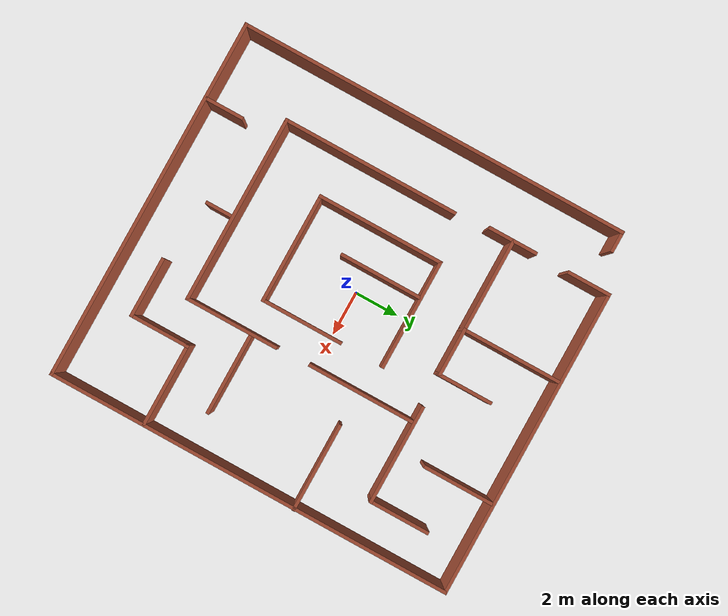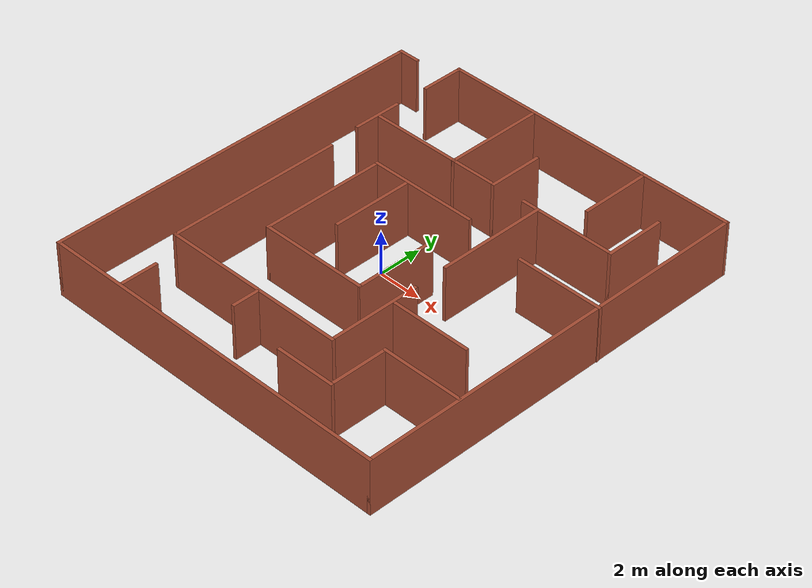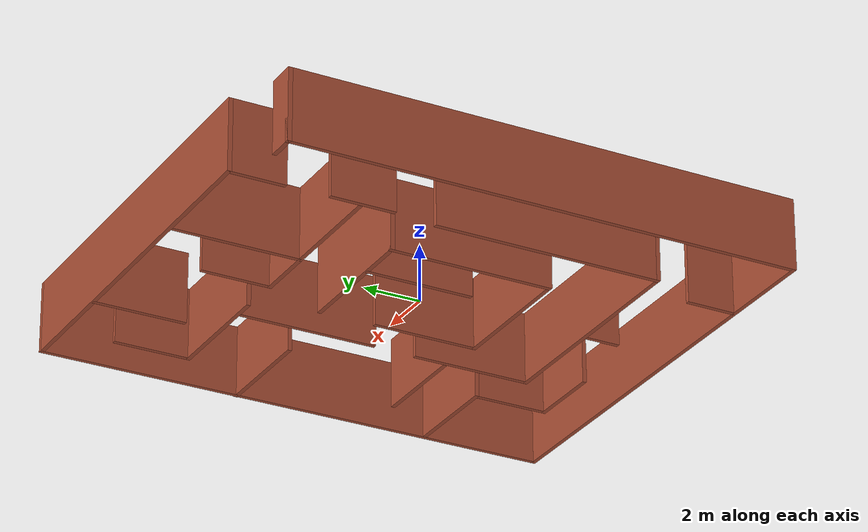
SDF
<?xml version='1.0'?>
<sdf version='1.7'>
  <model name='walls'>
    <pose>0.822707 -0.094534 0 0 -0 0</pose>
    <link name='Wall_10'>
      <collision name='Wall_10_Collision'>
        <geometry>
          <box>
            <size>2 0.15 2.5</size>
          </box>
        </geometry>
        <pose>0 0 1.25 0 -0 0</pose>
      </collision>
      <visual name='Wall_10_Visual'>
        <pose>0 0 1.25 0 -0 0</pose>
        <geometry>
          <box>
            <size>2 0.15 2.5</size>
          </box>
        </geometry>
        <material>
          <script>
            <uri>file://media/materials/scripts/gazebo.material</uri>
            <name>Gazebo/Bricks</name>
          </script>
          <ambient>1 1 1 1</ambient>
        </material>
        <meta>
          <layer>0</layer>
        </meta>
      </visual>
      <pose>-5.68821 8.25 0 0 -0 -1.5708</pose>
    </link>
    <link name='Wall_13'>
      <collision name='Wall_13_Collision'>
        <geometry>
          <box>
            <size>2.25 0.15 2.5</size>
          </box>
        </geometry>
        <pose>0 0 1.25 0 -0 0</pose>
      </collision>
      <visual name='Wall_13_Visual'>
        <pose>0 0 1.25 0 -0 0</pose>
        <geometry>
          <box>
            <size>2.25 0.15 2.5</size>
          </box>
        </geometry>
        <material>
          <script>
            <uri>file://media/materials/scripts/gazebo.material</uri>
            <name>Gazebo/Bricks</name>
          </script>
          <ambient>1 1 1 1</ambient>
        </material>
        <meta>
          <layer>0</layer>
        </meta>
      </visual>
      <pose>-5.72244 4.67661 0 0 -0 -1.5708</pose>
    </link>
    <link name='Wall_15'>
      <collision name='Wall_15_Collision'>
        <geometry>
          <box>
            <size>4.25 0.15 2.5</size>
          </box>
        </geometry>
        <pose>0 0 1.25 0 -0 0</pose>
      </collision>
      <visual name='Wall_15_Visual'>
        <pose>0 0 1.25 0 -0 0</pose>
        <geometry>
          <box>
            <size>4.25 0.15 2.5</size>
          </box>
        </geometry>
        <material>
          <script>
            <uri>file://media/materials/scripts/gazebo.material</uri>
            <name>Gazebo/Bricks</name>
          </script>
          <ambient>1 1 1 1</ambient>
        </material>
        <meta>
          <layer>0</layer>
        </meta>
      </visual>
      <pose>-3.62592 4.70309 0 0 -0 0</pose>
    </link>
    <link name='Wall_16'>
      <collision name='Wall_16_Collision'>
        <geometry>
          <box>
            <size>4.5 0.15 2.5</size>
          </box>
        </geometry>
        <pose>0 0 1.25 0 -0 0</pose>
      </collision>
      <visual name='Wall_16_Visual'>
        <pose>0 0 1.25 0 -0 0</pose>
        <geometry>
          <box>
            <size>4.5 0.15 2.5</size>
          </box>
        </geometry>
        <material>
          <script>
            <uri>file://media/materials/scripts/gazebo.material</uri>
            <name>Gazebo/Bricks</name>
          </script>
          <ambient>1 1 1 1</ambient>
        </material>
        <meta>
          <layer>0</layer>
        </meta>
      </visual>
      <pose>-1.57592 6.87809 0 0 -0 1.5708</pose>
    </link>
    <link name='Wall_18'>
      <collision name='Wall_18_Collision'>
        <geometry>
          <box>
            <size>2.25 0.15 2.5</size>
          </box>
        </geometry>
        <pose>0 0 1.25 0 -0 0</pose>
      </collision>
      <visual name='Wall_18_Visual'>
        <pose>0 0 1.25 0 -0 0</pose>
        <geometry>
          <box>
            <size>2.25 0.15 2.5</size>
          </box>
        </geometry>
        <material>
          <script>
            <uri>file://media/materials/scripts/gazebo.material</uri>
            <name>Gazebo/Bricks</name>
          </script>
          <ambient>1 1 1 1</ambient>
        </material>
        <meta>
          <layer>0</layer>
        </meta>
      </visual>
      <pose>-0.525917 4.70309 0 0 -0 0</pose>
    </link>
    <link name='Wall_20'>
      <collision name='Wall_20_Collision'>
        <geometry>
          <box>
            <size>4.5 0.15 2.5</size>
          </box>
        </geometry>
        <pose>0 0 1.25 0 -0 0</pose>
      </collision>
      <visual name='Wall_20_Visual'>
        <pose>0 0 1.25 0 -0 0</pose>
        <geometry>
          <box>
            <size>4.5 0.15 2.5</size>
          </box>
        </geometry>
        <material>
          <script>
            <uri>file://media/materials/scripts/gazebo.material</uri>
            <name>Gazebo/Bricks</name>
          </script>
          <ambient>1 1 1 1</ambient>
        </material>
        <meta>
          <layer>0</layer>
        </meta>
      </visual>
      <pose>4.22205 4.74961 0 0 -0 0</pose>
    </link>
    <link name='Wall_22'>
      <collision name='Wall_22_Collision'>
        <geometry>
          <box>
            <size>3.25 0.15 2.5</size>
          </box>
        </geometry>
        <pose>0 0 1.25 0 -0 0</pose>
      </collision>
      <visual name='Wall_22_Visual'>
        <pose>0 0 1.25 0 -0 0</pose>
        <geometry>
          <box>
            <size>3.25 0.15 2.5</size>
          </box>
        </geometry>
        <material>
          <script>
            <uri>file://media/materials/scripts/gazebo.material</uri>
            <name>Gazebo/Bricks</name>
          </script>
          <ambient>1 1 1 1</ambient>
        </material>
        <meta>
          <layer>0</layer>
        </meta>
      </visual>
      <pose>4.0941 7.57286 0 0 -0 -1.5708</pose>
    </link>
    <link name='Wall_24'>
      <collision name='Wall_24_Collision'>
        <geometry>
          <box>
            <size>5 0.15 2.5</size>
          </box>
        </geometry>
        <pose>0 0 1.25 0 -0 0</pose>
      </collision>
      <visual name='Wall_24_Visual'>
        <pose>0 0 1.25 0 -0 0</pose>
        <geometry>
          <box>
            <size>5 0.15 2.5</size>
          </box>
        </geometry>
        <material>
          <script>
            <uri>file://media/materials/scripts/gazebo.material</uri>
            <name>Gazebo/Bricks</name>
          </script>
          <ambient>1 1 1 1</ambient>
        </material>
        <meta>
          <layer>0</layer>
        </meta>
      </visual>
      <pose>2.74491 2.32461 0 0 -0 -1.5708</pose>
    </link>
    <link name='Wall_26'>
      <collision name='Wall_26_Collision'>
        <geometry>
          <box>
            <size>4.25 0.15 2.5</size>
          </box>
        </geometry>
        <pose>0 0 1.25 0 -0 0</pose>
      </collision>
      <visual name='Wall_26_Visual'>
        <pose>0 0 1.25 0 -0 0</pose>
        <geometry>
          <box>
            <size>4.25 0.15 2.5</size>
          </box>
        </geometry>
        <material>
          <script>
            <uri>file://media/materials/scripts/gazebo.material</uri>
            <name>Gazebo/Bricks</name>
          </script>
          <ambient>1 1 1 1</ambient>
        </material>
        <meta>
          <layer>0</layer>
        </meta>
      </visual>
      <pose>2.79144 -3.76721 0 0 -0 -1.5708</pose>
    </link>
    <link name='Wall_27'>
      <collision name='Wall_27_Collision'>
        <geometry>
          <box>
            <size>8.5 0.15 2.5</size>
          </box>
        </geometry>
        <pose>0 0 1.25 0 -0 0</pose>
      </collision>
      <visual name='Wall_27_Visual'>
        <pose>0 0 1.25 0 -0 0</pose>
        <geometry>
          <box>
            <size>8.5 0.15 2.5</size>
          </box>
        </geometry>
        <material>
          <script>
            <uri>file://media/materials/scripts/gazebo.material</uri>
            <name>Gazebo/Bricks</name>
          </script>
          <ambient>1 1 1 1</ambient>
        </material>
        <meta>
          <layer>0</layer>
        </meta>
      </visual>
      <pose>-1.38356 -5.81721 0 0 -0 3.14159</pose>
    </link>
    <link name='Wall_28'>
      <collision name='Wall_28_Collision'>
        <geometry>
          <box>
            <size>8 0.15 2.5</size>
          </box>
        </geometry>
        <pose>0 0 1.25 0 -0 0</pose>
      </collision>
      <visual name='Wall_28_Visual'>
        <pose>0 0 1.25 0 -0 0</pose>
        <geometry>
          <box>
            <size>8 0.15 2.5</size>
          </box>
        </geometry>
        <material>
          <script>
            <uri>file://media/materials/scripts/gazebo.material</uri>
            <name>Gazebo/Bricks</name>
          </script>
          <ambient>1 1 1 1</ambient>
        </material>
        <meta>
          <layer>0</layer>
        </meta>
      </visual>
      <pose>-5.55856 -1.89221 0 0 -0 1.5708</pose>
    </link>
    <link name='Wall_30'>
      <collision name='Wall_30_Collision'>
        <geometry>
          <box>
            <size>1.25 0.15 2.5</size>
          </box>
        </geometry>
        <pose>0 0 1.25 0 -0 0</pose>
      </collision>
      <visual name='Wall_30_Visual'>
        <pose>0 0 1.25 0 -0 0</pose>
        <geometry>
          <box>
            <size>1.25 0.15 2.5</size>
          </box>
        </geometry>
        <material>
          <script>
            <uri>file://media/materials/scripts/gazebo.material</uri>
            <name>Gazebo/Bricks</name>
          </script>
          <ambient>1 1 1 1</ambient>
        </material>
        <meta>
          <layer>0</layer>
        </meta>
      </visual>
      <pose>-1.02353 -6.45437 0 0 -0 -1.5708</pose>
    </link>
    <link name='Wall_32'>
      <collision name='Wall_32_Collision'>
        <geometry>
          <box>
            <size>1.75 0.15 2.5</size>
          </box>
        </geometry>
        <pose>0 0 1.25 0 -0 0</pose>
      </collision>
      <visual name='Wall_32_Visual'>
        <pose>0 0 1.25 0 -0 0</pose>
        <geometry>
          <box>
            <size>1.75 0.15 2.5</size>
          </box>
        </geometry>
        <material>
          <script>
            <uri>file://media/materials/scripts/gazebo.material</uri>
            <name>Gazebo/Bricks</name>
          </script>
          <ambient>1 1 1 1</ambient>
        </material>
        <meta>
          <layer>0</layer>
        </meta>
      </visual>
      <pose>-4.74544 -8.28618 0 0 -0 -1.5708</pose>
    </link>
    <link name='Wall_34'>
      <collision name='Wall_34_Collision'>
        <geometry>
          <box>
            <size>3.75 0.15 2.5</size>
          </box>
        </geometry>
        <pose>0 0 1.25 0 -0 0</pose>
      </collision>
      <visual name='Wall_34_Visual'>
        <pose>0 0 1.25 0 -0 0</pose>
        <geometry>
          <box>
            <size>3.75 0.15 2.5</size>
          </box>
        </geometry>
        <material>
          <script>
            <uri>file://media/materials/scripts/gazebo.material</uri>
            <name>Gazebo/Bricks</name>
          </script>
          <ambient>1 1 1 1</ambient>
        </material>
        <meta>
          <layer>0</layer>
        </meta>
      </visual>
      <pose>4.63796 -2.83379 0 0 -0 0</pose>
    </link>
    <link name='Wall_36'>
      <collision name='Wall_36_Collision'>
        <geometry>
          <box>
            <size>4 0.15 2.5</size>
          </box>
        </geometry>
        <pose>0 0 1.25 0 -0 0</pose>
      </collision>
      <visual name='Wall_36_Visual'>
        <pose>0 0 1.25 0 -0 0</pose>
        <geometry>
          <box>
            <size>4 0.15 2.5</size>
          </box>
        </geometry>
        <material>
          <script>
            <uri>file://media/materials/scripts/gazebo.material</uri>
            <name>Gazebo/Bricks</name>
          </script>
          <ambient>1 1 1 1</ambient>
        </material>
        <meta>
          <layer>0</layer>
        </meta>
      </visual>
      <pose>6.26321 2.14427 0 0 -0 3.14159</pose>
    </link>
    <link name='Wall_38'>
      <collision name='Wall_38_Collision'>
        <geometry>
          <box>
            <size>5 0.15 2.5</size>
          </box>
        </geometry>
        <pose>0 0 1.25 0 -0 0</pose>
      </collision>
      <visual name='Wall_38_Visual'>
        <pose>0 0 1.25 0 -0 0</pose>
        <geometry>
          <box>
            <size>5 0.15 2.5</size>
          </box>
        </geometry>
        <material>
          <script>
            <uri>file://media/materials/scripts/gazebo.material</uri>
            <name>Gazebo/Bricks</name>
          </script>
          <ambient>1 1 1 1</ambient>
        </material>
        <meta>
          <layer>0</layer>
        </meta>
      </visual>
      <pose>-1.07581 2.51646 0 0 -0 3.14159</pose>
    </link>
    <link name='Wall_39'>
      <collision name='Wall_39_Collision'>
        <geometry>
          <box>
            <size>5.75 0.15 2.5</size>
          </box>
        </geometry>
        <pose>0 0 1.25 0 -0 0</pose>
      </collision>
      <visual name='Wall_39_Visual'>
        <pose>0 0 1.25 0 -0 0</pose>
        <geometry>
          <box>
            <size>5.75 0.15 2.5</size>
          </box>
        </geometry>
        <material>
          <script>
            <uri>file://media/materials/scripts/gazebo.material</uri>
            <name>Gazebo/Bricks</name>
          </script>
          <ambient>1 1 1 1</ambient>
        </material>
        <meta>
          <layer>0</layer>
        </meta>
      </visual>
      <pose>-3.50081 -0.283537 0 0 -0 -1.5708</pose>
    </link>
    <link name='Wall_40'>
      <collision name='Wall_40_Collision'>
        <geometry>
          <box>
            <size>5 0.15 2.5</size>
          </box>
        </geometry>
        <pose>0 0 1.25 0 -0 0</pose>
      </collision>
      <visual name='Wall_40_Visual'>
        <pose>0 0 1.25 0 -0 0</pose>
        <geometry>
          <box>
            <size>5 0.15 2.5</size>
          </box>
        </geometry>
        <material>
          <script>
            <uri>file://media/materials/scripts/gazebo.material</uri>
            <name>Gazebo/Bricks</name>
          </script>
          <ambient>1 1 1 1</ambient>
        </material>
        <meta>
          <layer>0</layer>
        </meta>
      </visual>
      <pose>-1.07581 -3.08354 0 0 -0 0</pose>
    </link>
    <link name='Wall_41'>
      <collision name='Wall_41_Collision'>
        <geometry>
          <box>
            <size>3.75 0.15 2.5</size>
          </box>
        </geometry>
        <pose>0 0 1.25 0 -0 0</pose>
      </collision>
      <visual name='Wall_41_Visual'>
        <pose>0 0 1.25 0 -0 0</pose>
        <geometry>
          <box>
            <size>3.75 0.15 2.5</size>
          </box>
        </geometry>
        <material>
          <script>
            <uri>file://media/materials/scripts/gazebo.material</uri>
            <name>Gazebo/Bricks</name>
          </script>
          <ambient>1 1 1 1</ambient>
        </material>
        <meta>
          <layer>0</layer>
        </meta>
      </visual>
      <pose>1.34919 -1.28354 0 0 -0 1.5708</pose>
    </link>
    <link name='Wall_43'>
      <collision name='Wall_43_Collision'>
        <geometry>
          <box>
            <size>1 0.15 2.5</size>
          </box>
        </geometry>
        <pose>0 0 1.25 0 -0 0</pose>
      </collision>
      <visual name='Wall_43_Visual'>
        <pose>0 0 1.25 0 -0 0</pose>
        <geometry>
          <box>
            <size>1 0.15 2.5</size>
          </box>
        </geometry>
        <material>
          <script>
            <uri>file://media/materials/scripts/gazebo.material</uri>
            <name>Gazebo/Bricks</name>
          </script>
          <ambient>1 1 1 1</ambient>
        </material>
        <meta>
          <layer>0</layer>
        </meta>
      </visual>
      <pose>-7.76321 8.425 0 0 -0 0</pose>
    </link>
    <link name='Wall_46'>
      <collision name='Wall_46_Collision'>
        <geometry>
          <box>
            <size>2.5 0.15 2.5</size>
          </box>
        </geometry>
        <pose>0 0 1.25 0 -0 0</pose>
      </collision>
      <visual name='Wall_46_Visual'>
        <pose>0 0 1.25 0 -0 0</pose>
        <geometry>
          <box>
            <size>2.5 0.15 2.5</size>
          </box>
        </geometry>
        <material>
          <script>
            <uri>file://media/materials/scripts/gazebo.material</uri>
            <name>Gazebo/Bricks</name>
          </script>
          <ambient>1 1 1 1</ambient>
        </material>
        <meta>
          <layer>0</layer>
        </meta>
      </visual>
      <pose>0.524083 5.87809 0 0 -0 1.5708</pose>
    </link>
    <link name='Wall_48'>
      <collision name='Wall_48_Collision'>
        <geometry>
          <box>
            <size>2.75 0.15 2.5</size>
          </box>
        </geometry>
        <pose>0 0 1.25 0 -0 0</pose>
      </collision>
      <visual name='Wall_48_Visual'>
        <pose>0 0 1.25 0 -0 0</pose>
        <geometry>
          <box>
            <size>2.75 0.15 2.5</size>
          </box>
        </geometry>
        <material>
          <script>
            <uri>file://media/materials/scripts/gazebo.material</uri>
            <name>Gazebo/Bricks</name>
          </script>
          <ambient>1 1 1 1</ambient>
        </material>
        <meta>
          <layer>0</layer>
        </meta>
      </visual>
      <pose>6.39705 6.04961 0 0 -0 1.5708</pose>
    </link>
    <link name='Wall_5'>
      <collision name='Wall_5_Collision'>
        <geometry>
          <box>
            <size>17.75 0.15 2.5</size>
          </box>
        </geometry>
        <pose>0 0 1.25 0 -0 0</pose>
      </collision>
      <visual name='Wall_5_Visual'>
        <pose>0 0 1.25 0 -0 0</pose>
        <geometry>
          <box>
            <size>17.75 0.15 2.5</size>
          </box>
        </geometry>
        <material>
          <script>
            <uri>file://media/materials/scripts/gazebo.material</uri>
            <name>Gazebo/Bricks</name>
          </script>
          <ambient>1 1 1 1</ambient>
        </material>
        <meta>
          <layer>0</layer>
        </meta>
      </visual>
      <pose>-8.18821 -0.375 0 0 -0 -1.5708</pose>
    </link>
    <link name='Wall_50'>
      <collision name='Wall_50_Collision'>
        <geometry>
          <box>
            <size>3.75 0.15 2.5</size>
          </box>
        </geometry>
        <pose>0 0 1.25 0 -0 0</pose>
      </collision>
      <visual name='Wall_50_Visual'>
        <pose>0 0 1.25 0 -0 0</pose>
        <geometry>
          <box>
            <size>3.75 0.15 2.5</size>
          </box>
        </geometry>
        <material>
          <script>
            <uri>file://media/materials/scripts/gazebo.material</uri>
            <name>Gazebo/Bricks</name>
          </script>
          <ambient>1 1 1 1</ambient>
        </material>
        <meta>
          <layer>0</layer>
        </meta>
      </visual>
      <pose>6.29516 -4.88084 0 0 -0 3.14159</pose>
    </link>
    <link name='Wall_51'>
      <collision name='Wall_51_Collision'>
        <geometry>
          <box>
            <size>2.75 0.15 2.5</size>
          </box>
        </geometry>
        <pose>0 0 1.25 0 -0 0</pose>
      </collision>
      <visual name='Wall_51_Visual'>
        <pose>0 0 1.25 0 -0 0</pose>
        <geometry>
          <box>
            <size>2.75 0.15 2.5</size>
          </box>
        </geometry>
        <material>
          <script>
            <uri>file://media/materials/scripts/gazebo.material</uri>
            <name>Gazebo/Bricks</name>
          </script>
          <ambient>1 1 1 1</ambient>
        </material>
        <meta>
          <layer>0</layer>
        </meta>
      </visual>
      <pose>4.49516 -6.18084 0 0 -0 -1.5708</pose>
    </link>
    <link name='Wall_53'>
      <collision name='Wall_53_Collision'>
        <geometry>
          <box>
            <size>2.75 0.15 2.5</size>
          </box>
        </geometry>
        <pose>0 0 1.25 0 -0 0</pose>
      </collision>
      <visual name='Wall_53_Visual'>
        <pose>0 0 1.25 0 -0 0</pose>
        <geometry>
          <box>
            <size>2.75 0.15 2.5</size>
          </box>
        </geometry>
        <material>
          <script>
            <uri>file://media/materials/scripts/gazebo.material</uri>
            <name>Gazebo/Bricks</name>
          </script>
          <ambient>1 1 1 1</ambient>
        </material>
        <meta>
          <layer>0</layer>
        </meta>
      </visual>
      <pose>3.19516 -7.48084 0 0 -0 3.14159</pose>
    </link>
    <link name='Wall_55'>
      <collision name='Wall_55_Collision'>
        <geometry>
          <box>
            <size>3.75 0.15 2.5</size>
          </box>
        </geometry>
        <pose>0 0 1.25 0 -0 0</pose>
      </collision>
      <visual name='Wall_55_Visual'>
        <pose>0 0 1.25 0 -0 0</pose>
        <geometry>
          <box>
            <size>3.75 0.15 2.5</size>
          </box>
        </geometry>
        <material>
          <script>
            <uri>file://media/materials/scripts/gazebo.material</uri>
            <name>Gazebo/Bricks</name>
          </script>
          <ambient>1 1 1 1</ambient>
        </material>
        <meta>
          <layer>0</layer>
        </meta>
      </visual>
      <pose>-1.83759 0.657177 0 0 -0 -1.5708</pose>
    </link>
    <link name='Wall_6'>
      <collision name='Wall_6_Collision'>
        <geometry>
          <box>
            <size>16.5 0.15 2.5</size>
          </box>
        </geometry>
        <pose>0 0 1.25 0 -0 0</pose>
      </collision>
      <visual name='Wall_6_Visual'>
        <pose>0 0 1.25 0 -0 0</pose>
        <geometry>
          <box>
            <size>16.5 0.15 2.5</size>
          </box>
        </geometry>
        <material>
          <script>
            <uri>file://media/materials/scripts/gazebo.material</uri>
            <name>Gazebo/Bricks</name>
          </script>
          <ambient>1 1 1 1</ambient>
        </material>
        <meta>
          <layer>0</layer>
        </meta>
      </visual>
      <pose>-0.013208 -9.175 0 0 -0 0</pose>
    </link>
    <link name='Wall_7'>
      <collision name='Wall_7_Collision'>
        <geometry>
          <box>
            <size>18.5 0.15 2.5</size>
          </box>
        </geometry>
        <pose>0 0 1.25 0 -0 0</pose>
      </collision>
      <visual name='Wall_7_Visual'>
        <pose>0 0 1.25 0 -0 0</pose>
        <geometry>
          <box>
            <size>18.5 0.15 2.5</size>
          </box>
        </geometry>
        <material>
          <script>
            <uri>file://media/materials/scripts/gazebo.material</uri>
            <name>Gazebo/Bricks</name>
          </script>
          <ambient>1 1 1 1</ambient>
        </material>
        <meta>
          <layer>0</layer>
        </meta>
      </visual>
      <pose>8.16179 -0 0 0 -0 1.5708</pose>
    </link>
    <link name='Wall_8'>
      <collision name='Wall_8_Collision'>
        <geometry>
          <box>
            <size>14 0.15 2.5</size>
          </box>
        </geometry>
        <pose>0 0 1.25 0 -0 0</pose>
      </collision>
      <visual name='Wall_8_Visual'>
        <pose>0 0 1.25 0 -0 0</pose>
        <geometry>
          <box>
            <size>14 0.15 2.5</size>
          </box>
        </geometry>
        <material>
          <script>
            <uri>file://media/materials/scripts/gazebo.material</uri>
            <name>Gazebo/Bricks</name>
          </script>
          <ambient>1 1 1 1</ambient>
        </material>
        <meta>
          <layer>0</layer>
        </meta>
      </visual>
      <pose>1.23679 9.175 0 0 -0 3.14159</pose>
    </link>
    <static>1</static>
  </model>
</sdf>
